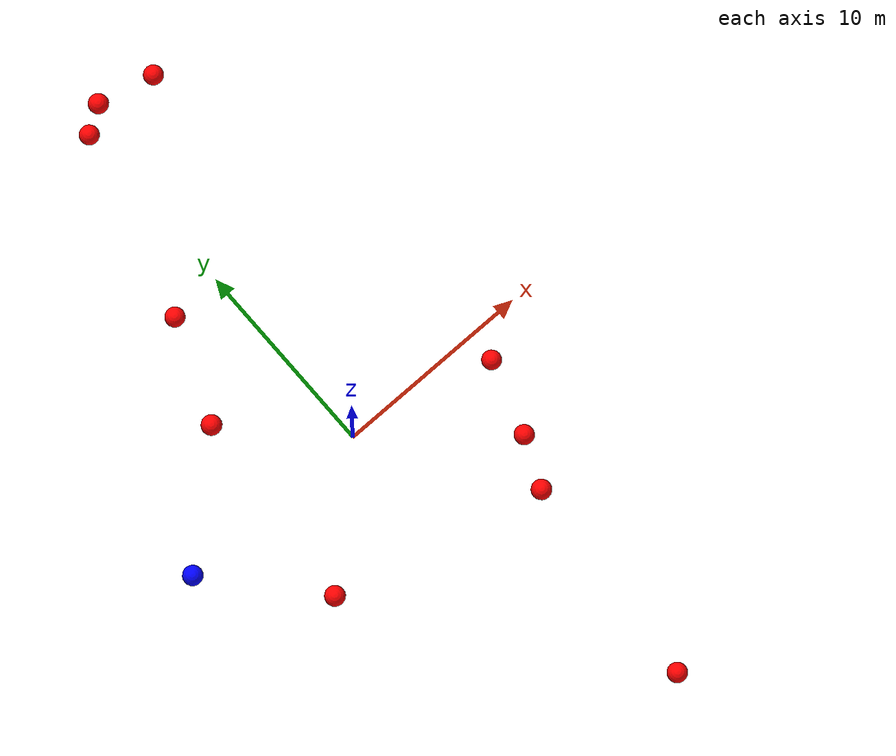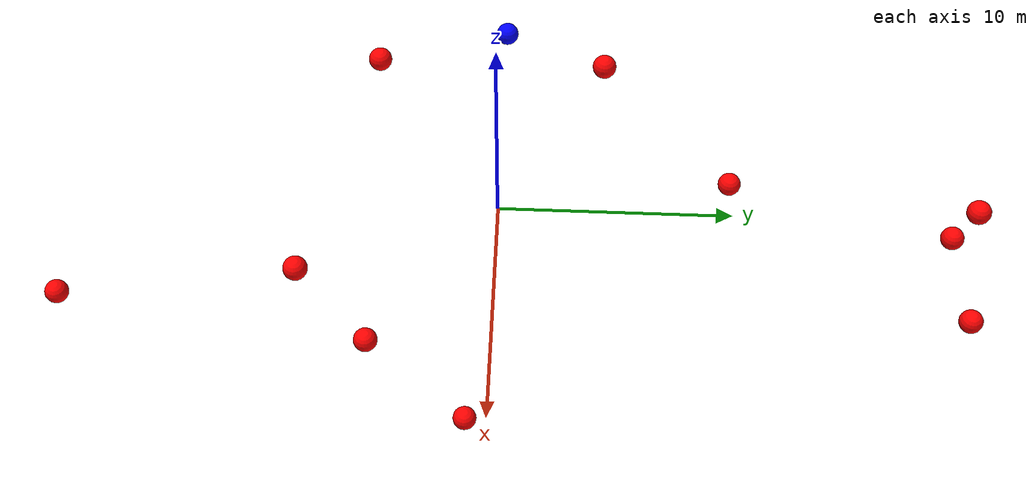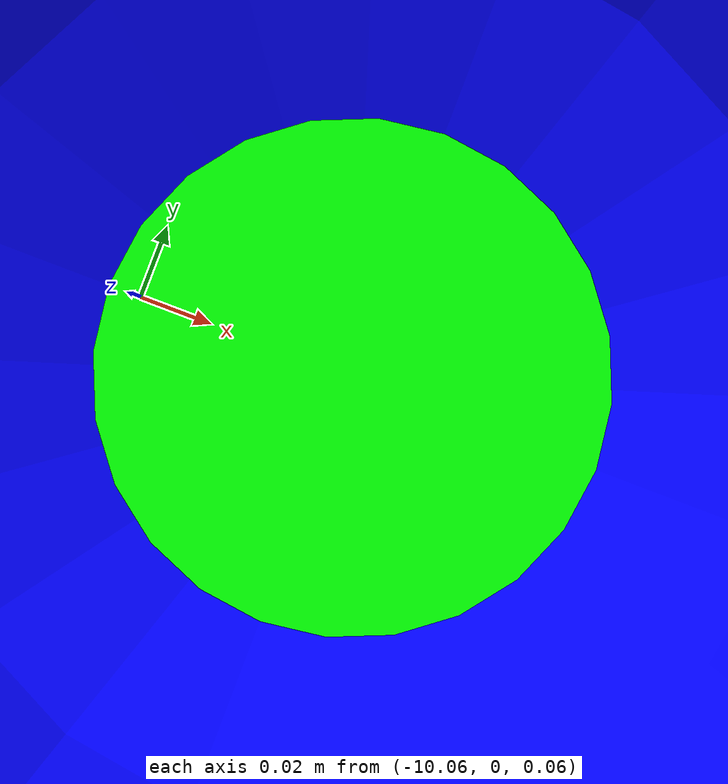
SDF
<?xml version="1.0" ?>
<sdf version="1.8">
    <world name="3d_world">
        <physics name="1ms" type="ode">
            <max_step_size>0.001</max_step_size>
            <real_time_factor>1.0</real_time_factor>
            <real_time_update_rate>1000.0</real_time_update_rate>
        </physics>
        <gravity>0 0 0</gravity>

        <plugin
            filename="gz-sim-physics-system"
            name="gz::sim::v8::systems::Physics">
        </plugin>
        <plugin
            filename="libignition-gazebo-user-commands-system.so"
            name="ignition::gazebo::systems::UserCommands">
        </plugin>
        <plugin
            filename="gz-sim-scene-broadcaster-system"
            name="gz::sim::systems::SceneBroadcaster">
        </plugin>
        <plugin
            filename="gz-sim-sensors-system"
            name="gz::sim::systems::Sensors">
            <render_engine>ogre2</render_engine>
        </plugin>

        <light type="directional" name="sun">
            <cast_shadows>true</cast_shadows>
            <pose>0 0 10 0 0 0</pose>
            <diffuse>0.8 0.8 0.8 1</diffuse>
            <specular>0.2 0.2 0.2 1</specular>
            <attenuation>
                <range>1000</range>
                <constant>0.9</constant>
                <linear>0.01</linear>
                <quadratic>0.001</quadratic>
            </attenuation>
            <direction>-0.5 0.1 -0.9</direction>
        </light>

        <!-- AGENTE -->
        <model name='agente' canonical_link='chassis'>
            <pose relative_to='world'>-10.0 0 0.0 0 0 0</pose>
            <link name='chassis'>
                <pose relative_to='__model__'>0.0 0 0.0 0 0 0</pose>
                <inertial>
                    <mass>1.14395</mass>
                    <inertia>
                        <ixx>0.095329</ixx>
                        <ixy>0</ixy>
                        <ixz>0</ixz>
                        <iyy>0.381317</iyy>
                        <iyz>0</iyz>
                        <izz>0.476646</izz>
                    </inertia>
                </inertial>
                <visual name='visual'>
                    <geometry>
                        <sphere>
                            <radius>0.5</radius>
                        </sphere>
                    </geometry>
                    <material>
                        <ambient>0.0 0.0 1.0 1</ambient>
                        <diffuse>0.0 0.0 1.0 1</diffuse>
                        <specular>0.0 0.0 1.0 1</specular>
                    </material>
                </visual>
                <collision name='collision'>
                    <geometry>
                        <sphere>
                            <radius>0.5</radius>
                        </sphere>
                    </geometry>
                </collision>
                <enable_gravity>false</enable_gravity>
            </link>

            <link name='lidar_link'>
                <pose relative_to='chassis'>0.0 0 0.1 0 0 0</pose>
                <inertial>
                    <mass>0.1</mass>
                    <inertia>
                        <ixx>0.000166667</ixx>
                        <iyy>0.000166667</iyy>
                        <izz>0.000166667</izz>
                    </inertia>
                </inertial>
                <collision name='collision'>
                    <geometry>
                        <cylinder>
                            <radius>0.05</radius>
                            <length>0.1</length>
                        </cylinder>
                    </geometry>
                </collision>
                <visual name='visual'>
                    <geometry>
                        <cylinder>
                            <radius>0.05</radius>
                            <length>0.1</length>
                        </cylinder>
                    </geometry>
                    <material>
                        <ambient>0.0 1.0 0.0 1</ambient>
                        <diffuse>0.0 1.0 0.0 1</diffuse>
                        <specular>0.0 1.0 0.0 1</specular>
                    </material>
                </visual>
                <sensor name="lidar" type="gpu_lidar">
                    <topic>scan</topic>
                    <update_rate>10</update_rate>
                    <lidar>
                        <scan>
                            <horizontal>
                                <samples>5000</samples>
                                <resolution>1</resolution>
                                <min_angle>-3.14159</min_angle>
                                <max_angle>3.14159</max_angle>
                            </horizontal>
                        </scan>
                        <range>
                            <min>0.1</min>
                            <max>10.0</max>
                            <resolution>0.01</resolution>
                        </range>
                    </lidar>
                    <visualize>true</visualize>
                    <always_on>true</always_on>
                    <update_rate>10</update_rate>
                    <pose_frame>lidar</pose_frame>
                </sensor>
                <enable_gravity>false</enable_gravity>
            </link>

            <joint name="lidar_joint" type="fixed">
                <parent>chassis</parent>
                <child>lidar_link</child>
            </joint>

            <plugin
                filename="ignition-gazebo-joint-state-publisher-system"
                name="ignition::gazebo::systems::JointStatePublisher">
            </plugin>
            <plugin
                filename="ignition-gazebo-odometry-publisher-system"
                name="ignition::gazebo::systems::OdometryPublisher">
                <dimensions>3</dimensions>
            </plugin>
            <plugin
                filename="ignition-gazebo-velocity-control-system"
                name="ignition::gazebo::systems::VelocityControl">
                <initial_linear>0.0 0 0</initial_linear>
                <initial_angular>0 0 0.0</initial_angular>
            </plugin>
            <plugin
                filename="libignition-gazebo-pose-publisher-system.so"
                name="ignition::gazebo::systems::PosePublisher">
                <topic>/agente/pose</topic>
                <frame_id>agente</frame_id>
                <update_rate>30</update_rate>
            </plugin>
        </model>

        <!-- OBSTACLE 1 -->
        <model name='obstacle_1' canonical_link='obstacle'>
            <static>false</static>
            <pose relative_to='world'>1.12 19.67 2.43 0 0 0</pose>
            <link name='obstacle'>
                <pose relative_to='__model__'>0.0 0 0.0 0 0 0</pose>
                <visual name='visual'>
                    <geometry>
                        <sphere>
                            <radius>0.50</radius>
                        </sphere>
                    </geometry>
                    <material>
                        <ambient>1.0 0.0 0.0 1</ambient>
                        <diffuse>1.0 0.0 0.0 1</diffuse>
                        <specular>1.0 0.0 0.0 1</specular>
                    </material>
                </visual>
                <collision name='collision'>
                    <geometry>
                        <sphere>
                            <radius>0.50</radius>
                        </sphere>
                    </geometry>
                </collision>
                <enable_gravity>false</enable_gravity>
            </link>

            <plugin
                filename="ignition-gazebo-velocity-control-system"
                name="ignition::gazebo::systems::VelocityControl">
                <initial_linear>0.35 -1.95 -0.24</initial_linear>
                <initial_angular>0 0 0</initial_angular>
            </plugin>

            <plugin
                filename="ignition-gazebo-odometry-publisher-system"
                name="ignition::gazebo::systems::OdometryPublisher">
                <dimensions>3</dimensions>
            </plugin>
        </model>

        <!-- OBSTACLE 2 -->
        <model name='obstacle_2' canonical_link='obstacle'>
            <static>false</static>
            <pose relative_to='world'>4.81 -7.85 2.22 0 0 0</pose>
            <link name='obstacle'>
                <pose relative_to='__model__'>0.0 0 0.0 0 0 0</pose>
                <visual name='visual'>
                    <geometry>
                        <sphere>
                            <radius>0.50</radius>
                        </sphere>
                    </geometry>
                    <material>
                        <ambient>1.0 0.0 0.0 1</ambient>
                        <diffuse>1.0 0.0 0.0 1</diffuse>
                        <specular>1.0 0.0 0.0 1</specular>
                    </material>
                </visual>
                <collision name='collision'>
                    <geometry>
                        <sphere>
                            <radius>0.50</radius>
                        </sphere>
                    </geometry>
                </collision>
                <enable_gravity>false</enable_gravity>
            </link>

            <plugin
                filename="ignition-gazebo-velocity-control-system"
                name="ignition::gazebo::systems::VelocityControl">
                <initial_linear>-1.06 1.63 -0.46</initial_linear>
                <initial_angular>0 0 0</initial_angular>
            </plugin>

            <plugin
                filename="ignition-gazebo-odometry-publisher-system"
                name="ignition::gazebo::systems::OdometryPublisher">
                <dimensions>3</dimensions>
            </plugin>
        </model>

        <!-- OBSTACLE 3 -->
        <model name='obstacle_3' canonical_link='obstacle'>
            <static>false</static>
            <pose relative_to='world'>0.11 19.51 -0.91 0 0 0</pose>
            <link name='obstacle'>
                <pose relative_to='__model__'>0.0 0 0.0 0 0 0</pose>
                <visual name='visual'>
                    <geometry>
                        <sphere>
                            <radius>0.50</radius>
                        </sphere>
                    </geometry>
                    <material>
                        <ambient>1.0 0.0 0.0 1</ambient>
                        <diffuse>1.0 0.0 0.0 1</diffuse>
                        <specular>1.0 0.0 0.0 1</specular>
                    </material>
                </visual>
                <collision name='collision'>
                    <geometry>
                        <sphere>
                            <radius>0.50</radius>
                        </sphere>
                    </geometry>
                </collision>
                <enable_gravity>false</enable_gravity>
            </link>

            <plugin
                filename="ignition-gazebo-velocity-control-system"
                name="ignition::gazebo::systems::VelocityControl">
                <initial_linear>-0.51 -1.93 0.09</initial_linear>
                <initial_angular>0 0 0</initial_angular>
            </plugin>

            <plugin
                filename="ignition-gazebo-odometry-publisher-system"
                name="ignition::gazebo::systems::OdometryPublisher">
                <dimensions>3</dimensions>
            </plugin>
        </model>

        <!-- OBSTACLE 4 -->
        <model name='obstacle_4' canonical_link='obstacle'>
            <static>false</static>
            <pose relative_to='world'>-5.75 -5.35 2.83 0 0 0</pose>
            <link name='obstacle'>
                <pose relative_to='__model__'>0.0 0 0.0 0 0 0</pose>
                <visual name='visual'>
                    <geometry>
                        <sphere>
                            <radius>0.50</radius>
                        </sphere>
                    </geometry>
                    <material>
                        <ambient>1.0 0.0 0.0 1</ambient>
                        <diffuse>1.0 0.0 0.0 1</diffuse>
                        <specular>1.0 0.0 0.0 1</specular>
                    </material>
                </visual>
                <collision name='collision'>
                    <geometry>
                        <sphere>
                            <radius>0.50</radius>
                        </sphere>
                    </geometry>
                </collision>
                <enable_gravity>false</enable_gravity>
            </link>

            <plugin
                filename="ignition-gazebo-velocity-control-system"
                name="ignition::gazebo::systems::VelocityControl">
                <initial_linear>1.77 0.82 -0.43</initial_linear>
                <initial_angular>0 0 0</initial_angular>
            </plugin>

            <plugin
                filename="ignition-gazebo-odometry-publisher-system"
                name="ignition::gazebo::systems::OdometryPublisher">
                <dimensions>3</dimensions>
            </plugin>
        </model>

        <!-- OBSTACLE 5 -->
        <model name='obstacle_5' canonical_link='obstacle'>
            <static>false</static>
            <pose relative_to='world'>7.89 -1.07 -4.13 0 0 0</pose>
            <link name='obstacle'>
                <pose relative_to='__model__'>0.0 0 0.0 0 0 0</pose>
                <visual name='visual'>
                    <geometry>
                        <sphere>
                            <radius>0.50</radius>
                        </sphere>
                    </geometry>
                    <material>
                        <ambient>1.0 0.0 0.0 1</ambient>
                        <diffuse>1.0 0.0 0.0 1</diffuse>
                        <specular>1.0 0.0 0.0 1</specular>
                    </material>
                </visual>
                <collision name='collision'>
                    <geometry>
                        <sphere>
                            <radius>0.50</radius>
                        </sphere>
                    </geometry>
                </collision>
                <enable_gravity>false</enable_gravity>
            </link>

            <plugin
                filename="ignition-gazebo-velocity-control-system"
                name="ignition::gazebo::systems::VelocityControl">
                <initial_linear>-0.07 0.15 0.59</initial_linear>
                <initial_angular>0 0 0</initial_angular>
            </plugin>

            <plugin
                filename="ignition-gazebo-odometry-publisher-system"
                name="ignition::gazebo::systems::OdometryPublisher">
                <dimensions>3</dimensions>
            </plugin>
        </model>

        <!-- OBSTACLE 6 -->
        <model name='obstacle_6' canonical_link='obstacle'>
            <static>false</static>
            <pose relative_to='world'>6.26 -5.14 -0.73 0 0 0</pose>
            <link name='obstacle'>
                <pose relative_to='__model__'>0.0 0 0.0 0 0 0</pose>
                <visual name='visual'>
                    <geometry>
                        <sphere>
                            <radius>0.50</radius>
                        </sphere>
                    </geometry>
                    <material>
                        <ambient>1.0 0.0 0.0 1</ambient>
                        <diffuse>1.0 0.0 0.0 1</diffuse>
                        <specular>1.0 0.0 0.0 1</specular>
                    </material>
                </visual>
                <collision name='collision'>
                    <geometry>
                        <sphere>
                            <radius>0.50</radius>
                        </sphere>
                    </geometry>
                </collision>
                <enable_gravity>false</enable_gravity>
            </link>

            <plugin
                filename="ignition-gazebo-velocity-control-system"
                name="ignition::gazebo::systems::VelocityControl">
                <initial_linear>-1.56 1.23 0.17</initial_linear>
                <initial_angular>0 0 0</initial_angular>
            </plugin>

            <plugin
                filename="ignition-gazebo-odometry-publisher-system"
                name="ignition::gazebo::systems::OdometryPublisher">
                <dimensions>3</dimensions>
            </plugin>
        </model>

        <!-- OBSTACLE 7 -->
        <model name='obstacle_7' canonical_link='obstacle'>
            <static>false</static>
            <pose relative_to='world'>4.27 -18.34 -1.02 0 0 0</pose>
            <link name='obstacle'>
                <pose relative_to='__model__'>0.0 0 0.0 0 0 0</pose>
                <visual name='visual'>
                    <geometry>
                        <sphere>
                            <radius>0.50</radius>
                        </sphere>
                    </geometry>
                    <material>
                        <ambient>1.0 0.0 0.0 1</ambient>
                        <diffuse>1.0 0.0 0.0 1</diffuse>
                        <specular>1.0 0.0 0.0 1</specular>
                    </material>
                </visual>
                <collision name='collision'>
                    <geometry>
                        <sphere>
                            <radius>0.50</radius>
                        </sphere>
                    </geometry>
                </collision>
                <enable_gravity>false</enable_gravity>
            </link>

            <plugin
                filename="ignition-gazebo-velocity-control-system"
                name="ignition::gazebo::systems::VelocityControl">
                <initial_linear>-0.55 1.92 0.11</initial_linear>
                <initial_angular>0 0 0</initial_angular>
            </plugin>

            <plugin
                filename="ignition-gazebo-odometry-publisher-system"
                name="ignition::gazebo::systems::OdometryPublisher">
                <dimensions>3</dimensions>
            </plugin>
        </model>

        <!-- OBSTACLE 8 -->
        <model name='obstacle_8' canonical_link='obstacle'>
            <static>false</static>
            <pose relative_to='world'>-2.54 10.10 -1.12 0 0 0</pose>
            <link name='obstacle'>
                <pose relative_to='__model__'>0.0 0 0.0 0 0 0</pose>
                <visual name='visual'>
                    <geometry>
                        <sphere>
                            <radius>0.50</radius>
                        </sphere>
                    </geometry>
                    <material>
                        <ambient>1.0 0.0 0.0 1</ambient>
                        <diffuse>1.0 0.0 0.0 1</diffuse>
                        <specular>1.0 0.0 0.0 1</specular>
                    </material>
                </visual>
                <collision name='collision'>
                    <geometry>
                        <sphere>
                            <radius>0.50</radius>
                        </sphere>
                    </geometry>
                </collision>
                <enable_gravity>false</enable_gravity>
            </link>

            <plugin
                filename="ignition-gazebo-velocity-control-system"
                name="ignition::gazebo::systems::VelocityControl">
                <initial_linear>0.51 -1.92 0.21</initial_linear>
                <initial_angular>0 0 0</initial_angular>
            </plugin>

            <plugin
                filename="ignition-gazebo-odometry-publisher-system"
                name="ignition::gazebo::systems::OdometryPublisher">
                <dimensions>3</dimensions>
            </plugin>
        </model>

        <!-- OBSTACLE 9 -->
        <model name='obstacle_9' canonical_link='obstacle'>
            <static>false</static>
            <pose relative_to='world'>-4.92 4.34 3.74 0 0 0</pose>
            <link name='obstacle'>
                <pose relative_to='__model__'>0.0 0 0.0 0 0 0</pose>
                <visual name='visual'>
                    <geometry>
                        <sphere>
                            <radius>0.50</radius>
                        </sphere>
                    </geometry>
                    <material>
                        <ambient>1.0 0.0 0.0 1</ambient>
                        <diffuse>1.0 0.0 0.0 1</diffuse>
                        <specular>1.0 0.0 0.0 1</specular>
                    </material>
                </visual>
                <collision name='collision'>
                    <geometry>
                        <sphere>
                            <radius>0.50</radius>
                        </sphere>
                    </geometry>
                </collision>
                <enable_gravity>false</enable_gravity>
            </link>

            <plugin
                filename="ignition-gazebo-velocity-control-system"
                name="ignition::gazebo::systems::VelocityControl">
                <initial_linear>1.36 -0.97 -0.84</initial_linear>
                <initial_angular>0 0 0</initial_angular>
            </plugin>

            <plugin
                filename="ignition-gazebo-odometry-publisher-system"
                name="ignition::gazebo::systems::OdometryPublisher">
                <dimensions>3</dimensions>
            </plugin>
        </model>

        <!-- OBSTACLE 10 -->
        <model name='obstacle_10' canonical_link='obstacle'>
            <static>false</static>
            <pose relative_to='world'>4.34 19.71 -0.79 0 0 0</pose>
            <link name='obstacle'>
                <pose relative_to='__model__'>0.0 0 0.0 0 0 0</pose>
                <visual name='visual'>
                    <geometry>
                        <sphere>
                            <radius>0.50</radius>
                        </sphere>
                    </geometry>
                    <material>
                        <ambient>1.0 0.0 0.0 1</ambient>
                        <diffuse>1.0 0.0 0.0 1</diffuse>
                        <specular>1.0 0.0 0.0 1</specular>
                    </material>
                </visual>
                <collision name='collision'>
                    <geometry>
                        <sphere>
                            <radius>0.50</radius>
                        </sphere>
                    </geometry>
                </collision>
                <enable_gravity>false</enable_gravity>
            </link>

            <plugin
                filename="ignition-gazebo-velocity-control-system"
                name="ignition::gazebo::systems::VelocityControl">
                <initial_linear>0.26 -1.98 0.08</initial_linear>
                <initial_angular>0 0 0</initial_angular>
            </plugin>

            <plugin
                filename="ignition-gazebo-odometry-publisher-system"
                name="ignition::gazebo::systems::OdometryPublisher">
                <dimensions>3</dimensions>
            </plugin>
        </model>

    </world>
</sdf>
